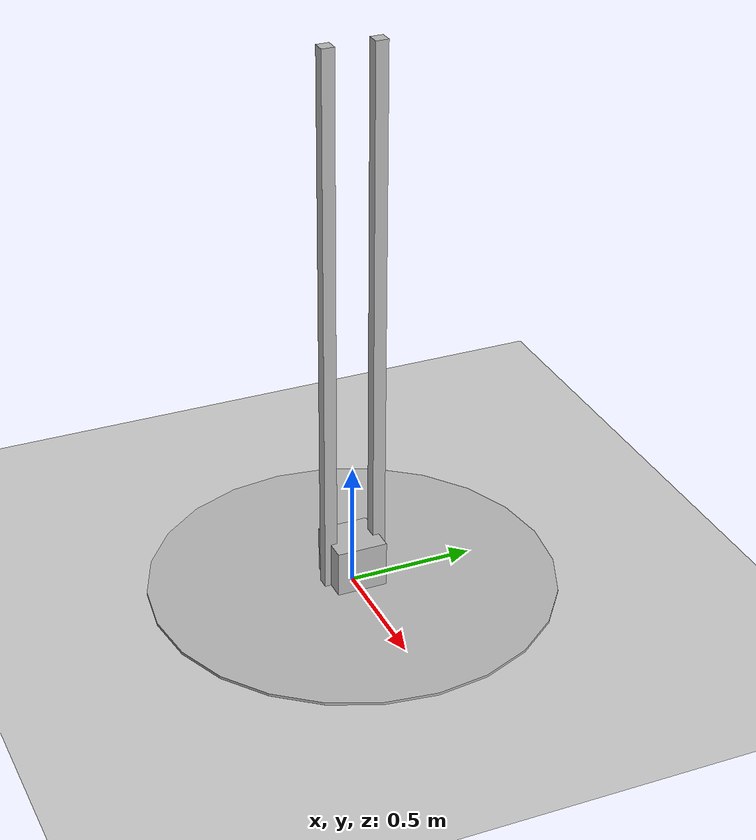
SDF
<?xml version="1.0"?>
<sdf version="1.4">
  <world name="default">

    <!-- Ground Plane -->
    <include>
      <uri>model://ground_plane</uri>
    </include>

    <include>
      <uri>model://sun</uri>
    </include>

    <include>
      <uri>model://srpl_mass_on_rails</uri>
    </include>
  </world>
</sdf>

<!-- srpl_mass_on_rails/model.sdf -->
<sdf version="1.5">
  <model name="srpl_mass_on_rails">

    <link name="base">
      <inertial>
        <mass>100</mass>
      </inertial>
      <visual name="vis_base">
        <pose>0 0 0.01 0 0 0</pose>
        <geometry>
          <cylinder>
            <radius>0.8</radius>
            <length>0.01</length>
          </cylinder>
        </geometry>
      </visual>
      <collision name="col_base">
        <pose>0 0 0.01 0 0 0</pose>
        <geometry>
          <cylinder>
            <radius>0.8</radius>
            <length>0.01</length>
          </cylinder>
        </geometry>
      </collision>
      <visual name="vis_rail1">
        <pose>0 0.1 1.1 0 0 0</pose>
        <geometry>
          <box>
            <size>0.05 0.05 2.2</size>
          </box>
        </geometry>
      </visual>
      <collision name="col_rail1">
        <pose>0 0.1 1.1 0 0 0</pose>
        <geometry>
          <box>
            <size>0.05 0.05 2.2</size>
          </box>
        </geometry>
      </collision>
      <visual name="vis_rail2">
        <pose>0 -0.1 1.1 0 0 0</pose>
        <geometry>
          <box>
            <size>0.05 0.05 2.2</size>
          </box>
        </geometry>
      </visual>
      <collision name="col_rail2">
        <pose>0 -0.1 1.1 0 0 0</pose>
        <geometry>
          <box>
            <size>0.05 0.05 2.2</size>
          </box>
        </geometry>
      </collision>
    </link>

    <link name="mass">
      <inertial>
        <mass>10</mass>
        <pose>0 0 0.1 0 0 0</pose>
      </inertial>
      <visual name="visual">
        <pose>0 0 0.1 0 0 0</pose>
        <geometry>
          <box>
            <size>0.2 0.2 0.2</size>
          </box>
        </geometry>
      </visual>
      <collision name="collision">
        <pose>0 0 0.1 0 0 0</pose>
        <geometry>
          <box>
            <size>0.2 0.2 0.2</size>
          </box>
        </geometry>
      </collision>
    </link>

    <joint name="joint" type="prismatic">
      <parent>base</parent>
      <child>mass</child>
      <axis>
        <dynamics>
          <damping>0.01</damping>
          <friction>0.01</friction>
        </dynamics>
        <xyz>0 0 1</xyz>
        <limit>
          <lower>0</lower>
          <upper>2</upper>
        </limit>
      </axis>
    </joint>

    <plugin name="srpl_mass_balance" filename="libsrpl_mass_balance.so"/>
  </model>
</sdf>
